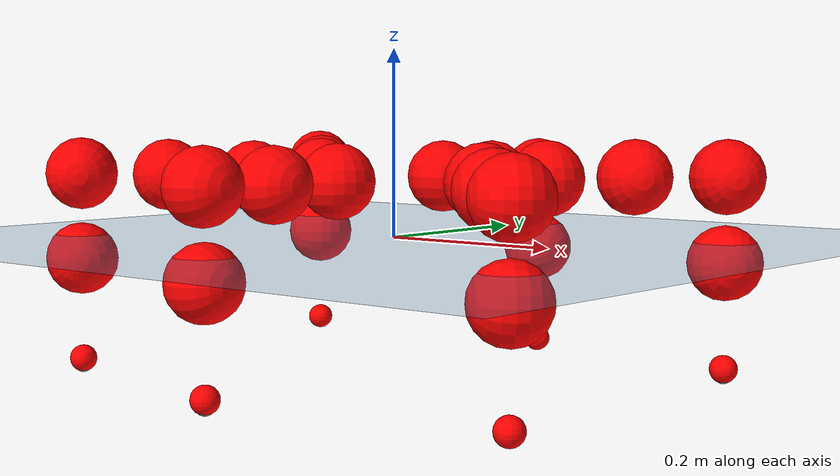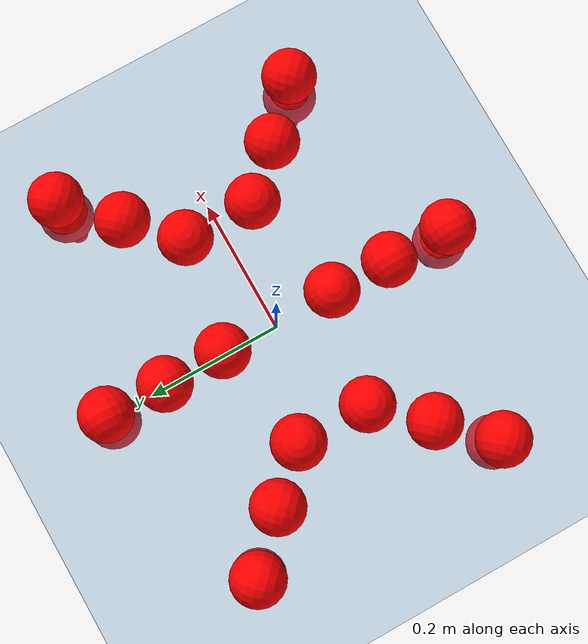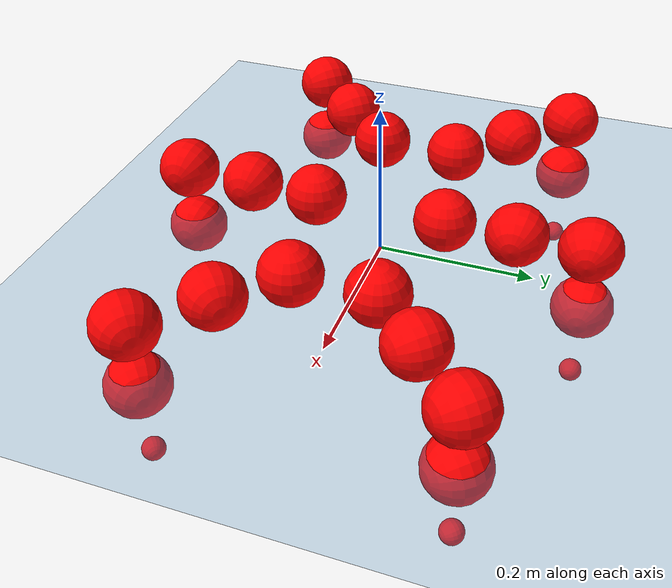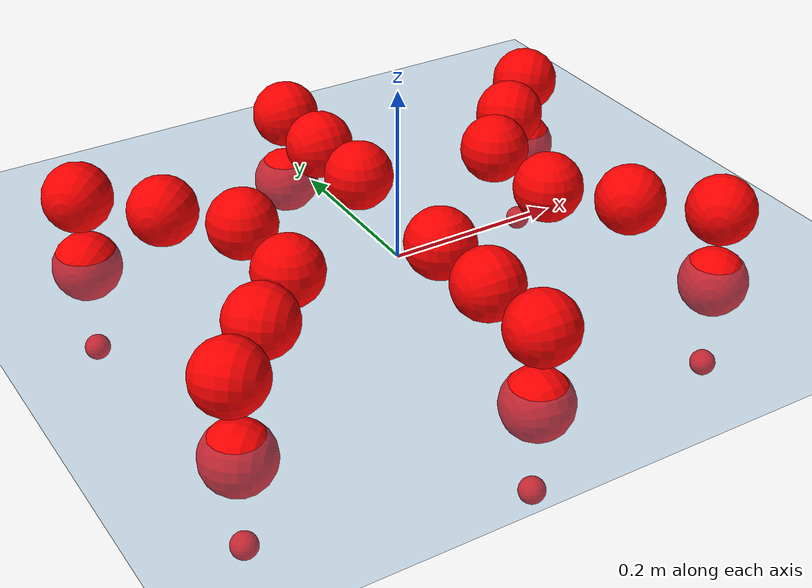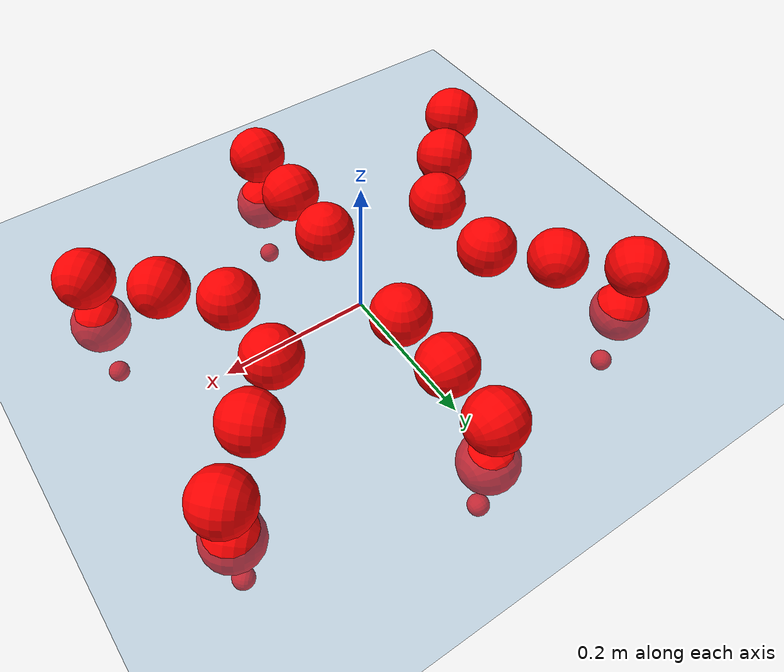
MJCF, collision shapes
<mujoco model="Golem">
  <compiler angle="radian" assetdir="assets" balanceinertia="true" inertiafromgeom="false"/>

  <option timestep="0.005" density="1.2" viscosity="2e-05"/>

  <size nkey="1"/>

  <visual>
    <quality shadowsize="8192"/>
    <map shadowclip="0.5"/>
  </visual>

  <default>
    <default class="/">
      <joint armature="0.01" damping="0.01" frictionloss="0.01"/>
      <geom contype="0" conaffinity="0" group="1" solref="-1000 -80"/>
      <site size="0.01 0.005 0.005" group="5"/>
      <general forcelimited="true" biastype="affine" gainprm="25" biasprm="0 -25 -0.5"/>
      <default class="visual">
        <geom type="mesh" group="2"/>
      </default>
      <default class="collision">
        <geom group="3"/>
      </default>
      <default class="foot">
        <geom size="0.01 0 0" condim="6" group="4" priority="1" solimp="0.015 1 0.01"/>
      </default>
      <default class="reward_collision_sphere">
        <geom group="5" rgba="1 0 0 1"/>
      </default>
    </default>
  </default>

  <asset>
    <texture type="skybox" colorspace="auto" name="//unnamed_texture_0" builtin="gradient" rgb1="0.95 0.95 0.95" rgb2="0.95 0.95 0.95" width="100" height="600"/>
    <texture type="2d" colorspace="auto" name="texplane" builtin="checker" rgb1="0.345 0.575 0.748" rgb2="0.345 0.575 0.748" markrgb="1 1 1" width="512" height="512"/>
    <material name="MatPlane" class="/" texture="texplane" texuniform="true" texrepeat="2 2" specular="0.9"/>
    <mesh name="body" class="/" file="body.stl" scale="0.001 0.001 0.001"/>
    <mesh name="coxa" class="/" file="coxa.stl" scale="0.001 0.001 0.001"/>
    <mesh name="femur" class="/" file="femur.stl" scale="0.001 0.001 0.001"/>
    <mesh name="tibia" class="/" file="tibia.stl" scale="0.001 0.001 0.001"/>
    <mesh name="tarsus" class="/" file="tarsus.stl" scale="0.001 0.001 0.001"/>
  </asset>

  <worldbody>
    <geom name="floor" class="/" size="100 100 0.125" type="plane" group="0" material="MatPlane"/>
    <light name="toplight_shadow" class="/" pos="0 0 5" dir="0.0990148 0.0990148 -0.990148" type="directional" ambient="0.04 0.04 0.04" diffuse="0.55 0.55 0.55" specular="0.12 0.12 0.12"/>
    <light name="toplight_fill" class="/" pos="0 0 5" dir="0.0990148 0.0990148 -0.990148" type="directional" castshadow="false" ambient="0.04 0.04 0.04" diffuse="0.3 0.3 0.3" specular="0.08 0.08 0.08"/>
    <body name="trunk" pos="-0.000491808 0.000772916 -0.00166311" quat="1 -0.000647576 -0.000113655 -0.000522458">
      <inertial pos="0.0023119 0.00144376 -0.00526079" quat="0.999902 0.00682269 0.000281634 0.01225" mass="3.42586" diaginertia="0.0115298 0.00513125 0.0122754"/>
      <joint name="//unnamed_joint_0" type="free"/>
      <geom name="//unnamed_geom_1" class="/" pos="0 0 0.0663643" quat="1 0 0 0" type="mesh" rgba="0.9 0.9 0.9 1" mesh="body"/>
      <site name="imu" class="/" pos="0.130364 0.00183397 0.100889" size="0.00980494"/>
      <camera name="track" class="/" pos="0 -1.75179 0" quat="0.707107 0.707107 0 0" mode="trackcom"/>
      <camera name="ego_camera" class="/" pos="0.133724 0 0.103694" quat="-0.5 -0.5 0.5 0.5"/>
      <body name="coxa_RR" pos="-0.18178 -0.0740558 0.0635392" quat="0.382673 3.05328e-06 8.28025e-06 -0.923884">
        <inertial pos="-0.000435848 -0.00263018 0.000532551" quat="1 -3.56261e-05 -0.000728105 -3.52865e-05" mass="0.182643" diaginertia="0.0111738 0.00480125 0.011964"/>
        <joint name="coxa_joint_RR" class="/" pos="0 0 0" axis="-0.0016708 -0.00553351 -0.999983" range="-3.19037 3.14574" armature="0.0102697" damping="0" frictionloss="0.00969267"/>
        <geom name="//unnamed_geom_2" class="/" type="mesh" rgba="0.2 0.2 0.2 1" mesh="coxa"/>
        <geom name="//unnamed_geom_3" class="reward_collision_sphere" size="0.0392198" pos="-0.0308594 0 0"/>
        <body name="femur_RR" pos="0.0626322 0.00238402 0.00192038" quat="0.499036 -0.50016 0.50074 0.500063">
          <inertial pos="0.0016896 -0.000474454 -0.00269853" quat="0.999989 -0.0037175 -0.00165662 -0.00225283" mass="0.183143" diaginertia="0.0113915 0.00502066 0.0122065"/>
          <joint name="femur_joint_RR" class="/" pos="0 0 0" axis="0.00535452 0.00192042 -0.999984" range="-3.13751 3.18557" armature="0.00989408" damping="0" frictionloss="0.0111577"/>
          <geom name="//unnamed_geom_4" class="/" type="mesh" rgba="0.9 0.9 0.9 1" mesh="femur"/>
          <geom name="//unnamed_geom_5" class="reward_collision_sphere" size="0.0392198"/>
          <body name="tibia_RR" pos="-0.001914 -0.0944976 0.000955356" quat="9.6205e-05 1 -0.000103088 -0.000136271">
            <inertial pos="0.000852808 -0.000115941 -0.00094392" quat="1 0.000104041 -0.000284064 4.86651e-05" mass="0.188432" diaginertia="0.0118609 0.00523555 0.0123467"/>
            <joint name="tibia_joint_RR" class="/" pos="0 0 0" axis="0.0134733 -0.00260728 0.999906" range="-3.0891 3.1049" armature="0.010313" damping="0.0208821" frictionloss="0.00854368"/>
            <geom name="//unnamed_geom_6" class="/" type="mesh" rgba="0.2 0.2 0.2 1" mesh="tibia"/>
            <geom name="//unnamed_geom_7" class="reward_collision_sphere" size="0.0392198"/>
            <body name="tarsus_RR" pos="0.093147 0.000266433 -0.00297794" quat="0.999999 -0.000221359 0.000416377 0.00126876">
              <inertial pos="0.0598754 0.000591746 -0.00252135" quat="0.497602 0.502863 0.501878 0.497634" mass="0.188665" diaginertia="0.0111509 0.00519522 0.0115835"/>
              <joint name="tarsus_joint_RR" class="/" pos="0 0 0" axis="-0.000660789 -0.00388854 0.999992" range="-3.18992 3.12545" armature="0.00870833" damping="0.00106926" frictionloss="0.010752"/>
              <geom name="//unnamed_geom_8" class="/" type="mesh" rgba="0.9 0.9 0.9 1" mesh="tarsus"/>
              <geom name="foot_1" class="foot" size="0.0108386" pos="0.115209 0 0" quat="0 -0.707107 0 0.707107"/>
              <geom name="//unnamed_geom_10" class="reward_collision_sphere" size="0.0392198"/>
              <geom name="//unnamed_geom_11" class="reward_collision_sphere" size="0.0147074" pos="0.11058 0 0"/>
              <site name="foot_1" class="foot" pos="0.115209 0 0" quat="0 -0.707107 0 0.707107" size="0.00980494"/>
            </body>
          </body>
        </body>
      </body>
      <body name="coxa_RM" pos="-0.000410414 -0.118592 0.0643836" quat="0.707432 -0.000145037 -0.000118704 -0.706781">
        <inertial pos="0.00253025 -0.000739461 -0.0012662" quat="0.999999 0.000357712 0.000820142 0.000996155" mass="0.183596" diaginertia="0.0113894 0.00525462 0.0120918"/>
        <joint name="coxa_joint_RM" class="/" pos="0 0 0" axis="-0.00241316 -2.6009e-05 -0.999997" range="-3.1548 3.13916" armature="0.0109706" damping="0.000439964" frictionloss="0.0110411"/>
        <geom name="//unnamed_geom_12" class="/" type="mesh" rgba="0.2 0.2 0.2 1" mesh="coxa"/>
        <geom name="//unnamed_geom_13" class="reward_collision_sphere" size="0.0392198" pos="-0.0308594 0 0"/>
        <body name="femur_RM" pos="0.0590071 -0.00150103 6.24318e-05" quat="0.499987 -0.500004 0.499999 0.500011">
          <inertial pos="0.000199873 -0.00289867 -0.000406545" quat="0.999928 -0.00332604 -0.00126467 0.0114268" mass="0.186883" diaginertia="0.0112656 0.00513573 0.0118312"/>
          <joint name="femur_joint_RM" class="/" pos="0 0 0" axis="0.011102 0.000576094 -0.999938" stiffness="0.00893064" range="-3.14719 3.12465" armature="0.0106777" damping="0.023329" frictionloss="0.00843085"/>
          <geom name="//unnamed_geom_14" class="/" type="mesh" rgba="0.9 0.9 0.9 1" mesh="femur"/>
          <geom name="//unnamed_geom_15" class="reward_collision_sphere" size="0.0392198"/>
          <body name="tibia_RM" pos="-0.00199144 -0.0927267 -0.000327109" quat="-0.000491076 0.999999 -0.000622062 -0.00111937">
            <inertial pos="-0.00267887 -0.00067368 -0.000701691" quat="0.999907 -0.000617844 -0.00795191 -0.0110298" mass="0.184353" diaginertia="0.0111558 0.00497589 0.0117156"/>
            <joint name="tibia_joint_RM" class="/" pos="0 0 0" axis="0.000990679 0.00096986 0.999999" range="-3.15972 3.19175" armature="0.00874403" damping="0.00554254" frictionloss="0.00999572"/>
            <geom name="//unnamed_geom_16" class="/" type="mesh" rgba="0.2 0.2 0.2 1" mesh="tibia"/>
            <geom name="//unnamed_geom_17" class="reward_collision_sphere" size="0.0392198"/>
            <body name="tarsus_RM" pos="0.0910954 -0.00133101 -0.00019116" quat="1 0.000115982 0.000391934 0.000199415">
              <inertial pos="0.0630472 0.00110489 0.00243954" quat="0.496931 0.502817 0.498104 0.502123" mass="0.186195" diaginertia="0.0115061 0.00506784 0.0118431"/>
              <joint name="tarsus_joint_RM" class="/" pos="0 0 0" axis="-0.00236042 -0.00894494 0.999957" range="-3.18042 3.10535" armature="0.00981872" damping="0.00498598" frictionloss="0.0088058"/>
              <geom name="//unnamed_geom_18" class="/" type="mesh" rgba="0.9 0.9 0.9 1" mesh="tarsus"/>
              <geom name="foot_2" class="foot" size="0.0108076" pos="0.115209 0 0" quat="0 -0.707107 0 0.707107"/>
              <geom name="//unnamed_geom_20" class="reward_collision_sphere" size="0.0392198"/>
              <geom name="//unnamed_geom_21" class="reward_collision_sphere" size="0.0147074" pos="0.11058 0 0"/>
              <site name="foot_2" class="foot" pos="0.115209 0 0" quat="0 -0.707107 0 0.707107" size="0.00980494"/>
            </body>
          </body>
        </body>
      </body>
      <body name="coxa_RF" pos="0.183258 -0.0752026 0.0675143" quat="0.924359 0.000109004 -0.000701213 -0.381524">
        <inertial pos="-0.0012908 -0.000647337 0.00207884" quat="0.999993 -3.0883e-05 -0.00269719 0.00245045" mass="0.178859" diaginertia="0.0108169 0.00501197 0.0116757"/>
        <joint name="coxa_joint_RF" class="/" pos="0 0 0" axis="0.00130137 0.00596125 -0.999981" range="-3.13221 3.19433" armature="0.0090002" damping="0" frictionloss="0.0102561"/>
        <geom name="//unnamed_geom_22" class="/" type="mesh" rgba="0.2 0.2 0.2 1" mesh="coxa"/>
        <geom name="//unnamed_geom_23" class="reward_collision_sphere" size="0.0392198" pos="-0.0308594 0 0"/>
        <body name="femur_RF" pos="0.0596291 -0.00295059 -0.00206098" quat="0.499868 -0.500257 0.500079 0.499795">
          <inertial pos="-0.00223873 0.000575558 -0.000982009" quat="0.999948 -0.00105333 -0.0101256 -0.000325487" mass="0.186511" diaginertia="0.0111071 0.00512231 0.011649"/>
          <joint name="femur_joint_RF" class="/" pos="0 0 0" axis="-0.000763698 0.000620783 -1" stiffness="0.00765448" range="-3.12568 3.08248" armature="0.0101798" damping="0" frictionloss="0.0084282"/>
          <geom name="//unnamed_geom_24" class="/" type="mesh" rgba="0.9 0.9 0.9 1" mesh="femur"/>
          <geom name="//unnamed_geom_25" class="reward_collision_sphere" size="0.0392198"/>
          <body name="tibia_RF" pos="0.00108311 -0.097773 0.00240467" quat="0.000156631 1 0.000162663 -0.000110909">
            <inertial pos="0.000405346 -4.39088e-05 0.000324809" quat="0.999978 -0.00305344 -0.00585223 0.000493666" mass="0.182291" diaginertia="0.0109775 0.00496504 0.0119465"/>
            <joint name="tibia_joint_RF" class="/" pos="0 0 0" axis="0.000413408 0.0102261 0.999948" range="-3.12071 3.19408" armature="0.00953847" damping="0.00155011" frictionloss="0.0111677"/>
            <geom name="//unnamed_geom_26" class="/" type="mesh" rgba="0.2 0.2 0.2 1" mesh="tibia"/>
            <geom name="//unnamed_geom_27" class="reward_collision_sphere" size="0.0392198"/>
            <body name="tarsus_RF" pos="0.0905379 0.000663509 0.001018" quat="0.999999 -0.000916231 0.000185651 -0.00045097">
              <inertial pos="0.0593886 0.00123005 0.00190514" quat="0.499072 0.498204 0.498559 0.504142" mass="0.194625" diaginertia="0.0115934 0.00526544 0.0124089"/>
              <joint name="tarsus_joint_RF" class="/" pos="0 0 0" axis="0.0130274 -0.00462166 0.999904" stiffness="0.0268081" range="-3.1018 3.1448" armature="0.010329" damping="0.0100713" frictionloss="0.0102134"/>
              <geom name="//unnamed_geom_28" class="/" type="mesh" rgba="0.9 0.9 0.9 1" mesh="tarsus"/>
              <geom name="foot_3" class="foot" size="0.00973006" pos="0.115209 0 0" quat="0 -0.707107 0 0.707107"/>
              <geom name="//unnamed_geom_30" class="reward_collision_sphere" size="0.0392198"/>
              <geom name="//unnamed_geom_31" class="reward_collision_sphere" size="0.0147074" pos="0.11058 0 0"/>
              <site name="foot_3" class="foot" pos="0.115209 0 0" quat="0 -0.707107 0 0.707107" size="0.00980494"/>
            </body>
          </body>
        </body>
      </body>
      <body name="coxa_LR" pos="-0.180742 0.0761558 0.0645079" quat="0.382193 5.813e-06 0.000544847 0.924082">
        <inertial pos="-0.00220417 -0.00211753 0.000781185" quat="0.999945 -0.00240809 0.00976288 0.00296341" mass="0.184655" diaginertia="0.0111088 0.00486796 0.0117172"/>
        <joint name="coxa_joint_LR" class="/" pos="0 0 0" axis="0.00238967 0.00473343 -0.999986" stiffness="0.0134892" range="-3.19452 3.19491" armature="0.0111095" damping="0" frictionloss="0.0093435"/>
        <geom name="//unnamed_geom_32" class="/" type="mesh" rgba="0.2 0.2 0.2 1" mesh="coxa"/>
        <geom name="//unnamed_geom_33" class="reward_collision_sphere" size="0.0392198" pos="-0.0308594 0 0"/>
        <body name="femur_LR" pos="0.0601353 -0.0033381 0.00122693" quat="0.500486 -0.500581 0.499916 0.499015">
          <inertial pos="-0.000332795 0.000902076 0.000252322" quat="0.999999 -0.00030568 0.000829947 0.000555855" mass="0.190205" diaginertia="0.0114809 0.00530912 0.0120151"/>
          <joint name="femur_joint_LR" class="/" pos="0 0 0" axis="-0.00109688 0.00401764 0.999991" range="-3.12005 3.12686" armature="0.0098991" damping="0.020407" frictionloss="0.00976321"/>
          <geom name="//unnamed_geom_34" class="/" type="mesh" rgba="0.9 0.9 0.9 1" mesh="femur"/>
          <geom name="//unnamed_geom_35" class="reward_collision_sphere" size="0.0392198"/>
          <body name="tibia_LR" pos="-0.00316709 -0.0980908 0.000245381" quat="0.00105868 0.999999 0.000775939 0.000538532">
            <inertial pos="0.00285998 -0.00195301 -0.00221713" quat="0.999978 -0.00238347 0.00429565 -0.0043728" mass="0.191944" diaginertia="0.0114496 0.00506428 0.0122219"/>
            <joint name="tibia_joint_LR" class="/" pos="0 0 0" axis="0.00225858 -0.0146792 -0.99989" range="-3.08417 3.15616" armature="0.0109536" damping="0" frictionloss="0.00970566"/>
            <geom name="//unnamed_geom_36" class="/" type="mesh" rgba="0.2 0.2 0.2 1" mesh="tibia"/>
            <geom name="//unnamed_geom_37" class="reward_collision_sphere" size="0.0392198"/>
            <body name="tarsus_LR" pos="0.0882231 -0.000889571 0.000761601" quat="0.999999 -0.000631268 0.000845355 0.000419233">
              <inertial pos="0.0588419 -2.91748e-05 -0.000882753" quat="0.491961 0.495914 0.502346 0.5096" mass="0.185885" diaginertia="0.0118854 0.00496638 0.0118111"/>
              <joint name="tarsus_joint_LR" class="/" pos="0 0 0" axis="-0.00407287 0.000931228 -0.999991" range="-3.19499 3.08356" armature="0.00867921" damping="0.00427155" frictionloss="0.00846955"/>
              <geom name="//unnamed_geom_38" class="/" type="mesh" rgba="0.9 0.9 0.9 1" mesh="tarsus"/>
              <geom name="foot_4" class="foot" size="0.00957682" pos="0.115209 0 0" quat="0.707107 0 -0.707107 0"/>
              <geom name="//unnamed_geom_40" class="reward_collision_sphere" size="0.0392198"/>
              <geom name="//unnamed_geom_41" class="reward_collision_sphere" size="0.0147074" pos="0.11058 0 0"/>
              <site name="foot_4" class="foot" pos="0.115209 0 0" quat="0.707107 0 -0.707107 0" size="0.00980494"/>
            </body>
          </body>
        </body>
      </body>
      <body name="coxa_LM" pos="-0.000164204 0.113955 0.0637818" quat="0.707349 8.15005e-05 -9.35356e-05 0.706865">
        <inertial pos="-0.00192013 -0.00230535 0.00285715" quat="0.99998 0.0059534 -0.00146494 -0.00130709" mass="0.183857" diaginertia="0.0118055 0.00514817 0.0120347"/>
        <joint name="coxa_joint_LM" class="/" pos="0 0 0" axis="0.00302139 -0.000352717 -0.999995" range="-3.16014 3.16829" armature="0.0108419" damping="0.00662837" frictionloss="0.0111262"/>
        <geom name="//unnamed_geom_42" class="/" type="mesh" rgba="0.2 0.2 0.2 1" mesh="coxa"/>
        <geom name="//unnamed_geom_43" class="reward_collision_sphere" size="0.0392198" pos="-0.0308594 0 0"/>
        <body name="femur_LM" pos="0.0595283 0.00115687 -0.00161526" quat="0.500053 -0.499817 0.49998 0.50015">
          <inertial pos="0.00235038 -0.000680419 -0.00186777" quat="0.999944 -0.000852716 -0.00749763 -0.00738948" mass="0.199978" diaginertia="0.0116831 0.00529729 0.0119637"/>
          <joint name="femur_joint_LM" class="/" pos="0 0 0" axis="3.15805e-05 3.58691e-05 1" stiffness="6.29656e-05" range="-3.09969 3.1266" armature="0.00963635" damping="0.0169344" frictionloss="0.00861315"/>
          <geom name="//unnamed_geom_44" class="/" type="mesh" rgba="0.9 0.9 0.9 1" mesh="femur"/>
          <geom name="//unnamed_geom_45" class="reward_collision_sphere" size="0.0392198"/>
          <body name="tibia_LM" pos="-0.000934337 -0.0891318 -0.00224064" quat="0.000355521 1 -0.000128394 0.00070697">
            <inertial pos="0.00272062 -0.00125377 -0.00142039" quat="0.999988 0.000313094 -0.00493838 0.000351135" mass="0.189823" diaginertia="0.0116058 0.00511793 0.0116506"/>
            <joint name="tibia_joint_LM" class="/" pos="0 0 0" axis="0.00975789 0.0114781 -0.999887" stiffness="0.0026284" range="-3.14176 3.13925" armature="0.00970267" damping="0.00850496" frictionloss="0.00891513"/>
            <geom name="//unnamed_geom_46" class="/" type="mesh" rgba="0.2 0.2 0.2 1" mesh="tibia"/>
            <geom name="//unnamed_geom_47" class="reward_collision_sphere" size="0.0392198"/>
            <body name="tarsus_LM" pos="0.09015 0.00129901 -0.00177881" quat="1 0.000424647 -0.000373972 0.000226639">
              <inertial pos="0.062252 -0.000304693 0.00283478" quat="0.496838 0.498954 0.50139 0.502797" mass="0.192379" diaginertia="0.0114939 0.00501279 0.0120643"/>
              <joint name="tarsus_joint_LM" class="/" pos="0 0 0" axis="-0.000585615 -0.001808 -0.999998" range="-3.14853 3.15165" armature="0.0101209" damping="0.00337862" frictionloss="0.0103148"/>
              <geom name="//unnamed_geom_48" class="/" type="mesh" rgba="0.9 0.9 0.9 1" mesh="tarsus"/>
              <geom name="foot_5" class="foot" size="0.0100833" pos="0.115209 0 0" quat="0.707107 0 -0.707107 0"/>
              <geom name="//unnamed_geom_50" class="reward_collision_sphere" size="0.0392198"/>
              <geom name="//unnamed_geom_51" class="reward_collision_sphere" size="0.0147074" pos="0.11058 0 0"/>
              <site name="foot_5" class="foot" pos="0.115209 0 0" quat="0.707107 0 -0.707107 0" size="0.00980494"/>
            </body>
          </body>
        </body>
      </body>
      <body name="coxa_LF" pos="0.183577 0.0738187 0.067414" quat="0.924076 0.000104736 0.000234935 0.38221">
        <inertial pos="0.000282114 0.000604256 0.00145556" quat="0.999941 -0.0103537 0.00100642 0.00316309" mass="0.184589" diaginertia="0.0115267 0.00527295 0.011752"/>
        <joint name="coxa_joint_LF" class="/" pos="0 0 0" axis="-0.00230631 -0.00966281 -0.999951" range="-3.14991 3.1266" armature="0.00883972" damping="0.00114541" frictionloss="0.00944289"/>
        <geom name="//unnamed_geom_52" class="/" type="mesh" rgba="0.2 0.2 0.2 1" mesh="coxa"/>
        <geom name="//unnamed_geom_53" class="reward_collision_sphere" size="0.0392198" pos="-0.0308594 0 0"/>
        <body name="femur_LF" pos="0.0599922 -0.000419213 0.00124202" quat="0.499826 -0.500114 0.5001 0.49996">
          <inertial pos="0.000452723 0.000559872 -0.000844743" quat="0.999993 0.00146895 -4.6806e-05 0.00342886" mass="0.179638" diaginertia="0.0114895 0.00508282 0.0118666"/>
          <joint name="femur_joint_LF" class="/" pos="0 0 0" axis="0.00104933 0.00107348 0.999999" stiffness="0.0021729" range="-3.16018 3.15735" armature="0.0111427" damping="0.0180121" frictionloss="0.0105702"/>
          <geom name="//unnamed_geom_54" class="/" type="mesh" rgba="0.9 0.9 0.9 1" mesh="femur"/>
          <geom name="//unnamed_geom_55" class="reward_collision_sphere" size="0.0392198"/>
          <body name="tibia_LF" pos="2.47389e-06 -0.096401 -0.00185516" quat="0.000251665 0.999999 -0.000481586 0.00122146">
            <inertial pos="-0.00260065 0.000586373 0.000749278" quat="1 5.2424e-05 -0.000291342 0.0001798" mass="0.19698" diaginertia="0.0116573 0.00518749 0.0124843"/>
            <joint name="tibia_joint_LF" class="/" pos="0 0 0" axis="-0.00398346 -0.00088039 -0.999992" range="-3.12646 3.13703" armature="0.0111147" damping="0" frictionloss="0.00937459"/>
            <geom name="//unnamed_geom_56" class="/" type="mesh" rgba="0.2 0.2 0.2 1" mesh="tibia"/>
            <geom name="//unnamed_geom_57" class="reward_collision_sphere" size="0.0392198"/>
            <body name="tarsus_LF" pos="0.0891367 -0.00132672 -0.000133947" quat="1 0.000115338 -0.000279479 5.70206e-05">
              <inertial pos="0.0628312 0.00311658 -0.000566882" quat="0.496217 0.493619 0.510693 0.499301" mass="0.184752" diaginertia="0.0119582 0.00506611 0.0124703"/>
              <joint name="tarsus_joint_LF" class="/" pos="0 0 0" axis="-0.00666385 0.0135387 -0.999886" range="-3.11667 3.12887" armature="0.0108565" damping="0.0113223" frictionloss="0.00988535"/>
              <geom name="//unnamed_geom_58" class="/" type="mesh" rgba="0.9 0.9 0.9 1" mesh="tarsus"/>
              <geom name="foot_6" class="foot" size="0.0107201" pos="0.115209 0 0" quat="0.707107 0 -0.707107 0"/>
              <geom name="//unnamed_geom_60" class="reward_collision_sphere" size="0.0392198"/>
              <geom name="//unnamed_geom_61" class="reward_collision_sphere" size="0.0147074" pos="0.11058 0 0"/>
              <site name="foot_6" class="foot" pos="0.115209 0 0" quat="0.707107 0 -0.707107 0" size="0.00980494"/>
            </body>
          </body>
        </body>
      </body>
    </body>
  </worldbody>

  <contact>
    <pair class="/" geom1="floor" geom2="foot_1" name="//unnamed_contact_0"/>
    <pair class="/" geom1="floor" geom2="foot_2" name="//unnamed_contact_1"/>
    <pair class="/" geom1="floor" geom2="foot_3" name="//unnamed_contact_2"/>
    <pair class="/" geom1="floor" geom2="foot_4" name="//unnamed_contact_3"/>
    <pair class="/" geom1="floor" geom2="foot_5" name="//unnamed_contact_4"/>
    <pair class="/" geom1="floor" geom2="foot_6" name="//unnamed_contact_5"/>
  </contact>

  <actuator>
    <general name="coxa_joint_RR" class="/" joint="coxa_joint_RR" forcerange="-6.49834 6.49834" gainprm="24.6983" biasprm="0 -24.6983 -0.470594"/>
    <general name="femur_joint_RR" class="/" joint="femur_joint_RR" forcerange="-7.29276 7.29276" gainprm="24.6983" biasprm="0 -24.6983 -0.470594"/>
    <general name="tibia_joint_RR" class="/" joint="tibia_joint_RR" forcerange="-6.61367 6.61367" gainprm="24.6983" biasprm="0 -24.6983 -0.470594"/>
    <general name="tarsus_joint_RR" class="/" joint="tarsus_joint_RR" forcerange="-7.48341 7.48341" gainprm="24.6983" biasprm="0 -24.6983 -0.470594"/>
    <general name="coxa_joint_RM" class="/" joint="coxa_joint_RM" forcerange="-7.05281 7.05281" gainprm="24.6983" biasprm="0 -24.6983 -0.470594"/>
    <general name="femur_joint_RM" class="/" joint="femur_joint_RM" forcerange="-7.10479 7.10479" gainprm="24.6983" biasprm="0 -24.6983 -0.470594"/>
    <general name="tibia_joint_RM" class="/" joint="tibia_joint_RM" forcerange="-7.16692 7.16692" gainprm="24.6983" biasprm="0 -24.6983 -0.470594"/>
    <general name="tarsus_joint_RM" class="/" joint="tarsus_joint_RM" forcerange="-7.19647 7.19647" gainprm="24.6983" biasprm="0 -24.6983 -0.470594"/>
    <general name="coxa_joint_RF" class="/" joint="coxa_joint_RF" forcerange="-7.91031 7.91031" gainprm="24.6983" biasprm="0 -24.6983 -0.470594"/>
    <general name="femur_joint_RF" class="/" joint="femur_joint_RF" forcerange="-7.01615 7.01615" gainprm="24.6983" biasprm="0 -24.6983 -0.470594"/>
    <general name="tibia_joint_RF" class="/" joint="tibia_joint_RF" forcerange="-7.855 7.855" gainprm="24.6983" biasprm="0 -24.6983 -0.470594"/>
    <general name="tarsus_joint_RF" class="/" joint="tarsus_joint_RF" forcerange="-6.50769 6.50769" gainprm="24.6983" biasprm="0 -24.6983 -0.470594"/>
    <general name="coxa_joint_LR" class="/" joint="coxa_joint_LR" forcerange="-6.42665 6.42665" gainprm="24.6983" biasprm="0 -24.6983 -0.470594"/>
    <general name="femur_joint_LR" class="/" joint="femur_joint_LR" forcerange="-6.89021 6.89021" gainprm="24.6983" biasprm="0 -24.6983 -0.470594"/>
    <general name="tibia_joint_LR" class="/" joint="tibia_joint_LR" forcerange="-7.08153 7.08153" gainprm="24.6983" biasprm="0 -24.6983 -0.470594"/>
    <general name="tarsus_joint_LR" class="/" joint="tarsus_joint_LR" forcerange="-6.43085 6.43085" gainprm="24.6983" biasprm="0 -24.6983 -0.470594"/>
    <general name="coxa_joint_LM" class="/" joint="coxa_joint_LM" forcerange="-6.96408 6.96408" gainprm="24.6983" biasprm="0 -24.6983 -0.470594"/>
    <general name="femur_joint_LM" class="/" joint="femur_joint_LM" forcerange="-6.45967 6.45967" gainprm="24.6983" biasprm="0 -24.6983 -0.470594"/>
    <general name="tibia_joint_LM" class="/" joint="tibia_joint_LM" forcerange="-6.46515 6.46515" gainprm="24.6983" biasprm="0 -24.6983 -0.470594"/>
    <general name="tarsus_joint_LM" class="/" joint="tarsus_joint_LM" forcerange="-6.86779 6.86779" gainprm="24.6983" biasprm="0 -24.6983 -0.470594"/>
    <general name="coxa_joint_LF" class="/" joint="coxa_joint_LF" forcerange="-6.80672 6.80672" gainprm="24.6983" biasprm="0 -24.6983 -0.470594"/>
    <general name="femur_joint_LF" class="/" joint="femur_joint_LF" forcerange="-6.42663 6.42663" gainprm="24.6983" biasprm="0 -24.6983 -0.470594"/>
    <general name="tibia_joint_LF" class="/" joint="tibia_joint_LF" forcerange="-7.89111 7.89111" gainprm="24.6983" biasprm="0 -24.6983 -0.470594"/>
    <general name="tarsus_joint_LF" class="/" joint="tarsus_joint_LF" forcerange="-6.49599 6.49599" gainprm="24.6983" biasprm="0 -24.6983 -0.470594"/>
  </actuator>

  <sensor>
    <gyro site="imu" name="imu_angular_velocity"/>
    <velocimeter site="imu" name="imu_linear_velocity"/>
    <framelinvel objtype="site" objname="foot_1" name="foot_1_global_linear_velocity"/>
    <framelinvel objtype="site" objname="foot_2" name="foot_2_global_linear_velocity"/>
    <framelinvel objtype="site" objname="foot_3" name="foot_3_global_linear_velocity"/>
    <framelinvel objtype="site" objname="foot_4" name="foot_4_global_linear_velocity"/>
    <framelinvel objtype="site" objname="foot_5" name="foot_5_global_linear_velocity"/>
    <framelinvel objtype="site" objname="foot_6" name="foot_6_global_linear_velocity"/>
  </sensor>

  <keyframe>
    <key name="home" qpos="0 0 0.1457 1 0 0 0 0 0 0 0 0 0 0 0 0 0 0 0 0 0 0 0 0 0 0 0 0 0 0 0"/>
  </keyframe>
</mujoco>
